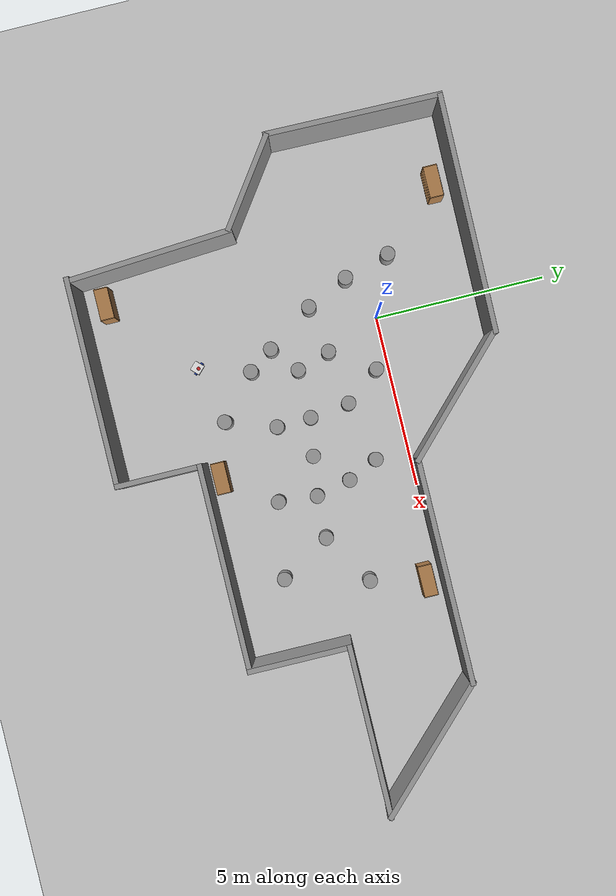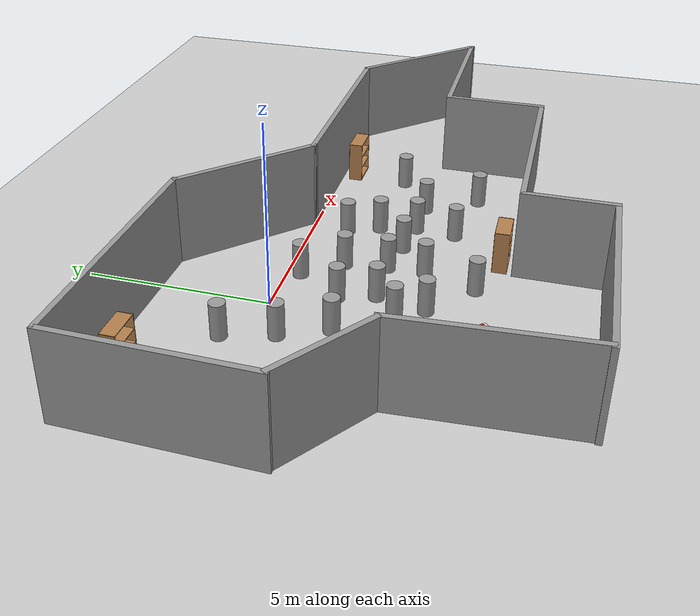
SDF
<sdf version="1.7">
 <world name="default">
  <light name="sun" type="directional">
   <pose>0 0 10 0 -0 0</pose>
   <diffuse>0.8 0.8 0.8 1</diffuse>
   <specular>0.2 0.2 0.2 1</specular>
   <attenuation>
    <range>1000</range>
    <constant>0.9</constant>
    <linear>0.01</linear>
    <quadratic>0.001</quadratic>
   </attenuation>
   <direction>-0.5 0.1 -0.9</direction>
   <spot><inner_angle>0</inner_angle><outer_angle>0</outer_angle><falloff>0</falloff></spot>
  </light>
  <model name="ground_plane">
   <static>1</static>
   <link name="link">
    <collision name="collision">
     <geometry><plane><normal>0 0 1</normal><size>100 100</size></plane></geometry>
     <surface>
      <contact><collide_bitmask>65535</collide_bitmask></contact>
      <friction><ode><mu>100</mu><mu2>50</mu2></ode></friction>
     </surface>
    </collision>
    <visual name="visual">
     <cast_shadows>0</cast_shadows>
     <geometry><plane><normal>0 0 1</normal><size>100 100</size></plane></geometry>
     <material>
      <script><uri>file://media/materials/scripts/gazebo.material</uri><name>Gazebo/Grey</name></script>
     </material>
    </visual>
   </link>
  </model>
  <gravity>0 0 -9.8</gravity>
  <magnetic_field>6e-06 2.3e-05 -4.2e-05</magnetic_field>
  <atmosphere type="adiabatic"/>
  <physics type="ode">
   <max_step_size>0.001</max_step_size>
   <real_time_factor>1</real_time_factor>
   <real_time_update_rate>1000</real_time_update_rate>
  </physics>
  <scene><ambient>0.4 0.4 0.4 1</ambient><background>0.7 0.7 0.7 1</background><shadows>1</shadows></scene>
  <audio><device>default</device></audio>
  <spherical_coordinates>
   <surface_model>EARTH_WGS84</surface_model>
   <latitude_deg>0</latitude_deg>
   <longitude_deg>0</longitude_deg>
   <elevation>0</elevation>
   <heading_deg>0</heading_deg>
  </spherical_coordinates>
  <model name="bird_looking_arena">
   <pose>4.12763 -2.55962 0 0 -0 0</pose>
   <link name="Wall_0">
    <collision name="Wall_0_Collision">
     <geometry><box><size>2.91921 0.15 2.5</size></box></geometry>
     <pose>0 0 1.25 0 -0 0</pose>
    </collision>
    <visual name="Wall_0_Visual">
     <pose>0 0 1.25 0 -0 0</pose>
     <geometry><box><size>2.91921 0.15 2.5</size></box></geometry>
     <material>
      <script><uri>file://media/materials/scripts/gazebo.material</uri><name>Gazebo/Grey</name></script>
      <ambient>1 1 1 1</ambient>
     </material>
     <meta><layer>0</layer></meta>
    </visual>
    <pose>-8.44584 -0.130166 0 0 -0 -0.619494</pose>
   </link>
   <link name="Wall_18">
    <collision name="Wall_18_Collision">
     <geometry><box><size>6.83715 0.15 2.5</size></box></geometry>
     <pose>0 0 1.25 0 -0 0</pose>
    </collision>
    <visual name="Wall_18_Visual">
     <pose>0 0 1.25 0 -0 0</pose>
     <geometry><box><size>6.83715 0.15 2.5</size></box></geometry>
     <material>
      <script><uri>file://media/materials/scripts/gazebo.material</uri><name>Gazebo/Grey</name></script>
      <ambient>1 1 1 1</ambient>
     </material>
     <meta><layer>0</layer></meta>
    </visual>
    <pose>-6.15934 5.60268 0 0 -0 -0.008654</pose>
   </link>
   <link name="Wall_19">
    <collision name="Wall_19_Collision">
     <geometry><box><size>4.30136 0.15 2.5</size></box></geometry>
     <pose>0 0 1.25 0 -0 0</pose>
    </collision>
    <visual name="Wall_19_Visual">
     <pose>0 0 1.25 0 -0 0</pose>
     <geometry><box><size>4.30136 0.15 2.5</size></box></geometry>
     <material>
      <script><uri>file://media/materials/scripts/gazebo.material</uri><name>Gazebo/Grey</name></script>
      <ambient>1 1 1 1</ambient>
     </material>
     <meta><layer>0</layer></meta>
    </visual>
    <pose>-1.32607 4.09326 0 0 -0 -0.770231</pose>
   </link>
   <link name="Wall_20">
    <collision name="Wall_20_Collision">
     <geometry><box><size>6.5 0.15 2.5</size></box></geometry>
     <pose>0 0 1.25 0 -0 0</pose>
    </collision>
    <visual name="Wall_20_Visual">
     <pose>0 0 1.25 0 -0 0</pose>
     <geometry><box><size>6.5 0.15 2.5</size></box></geometry>
     <material>
      <script><uri>file://media/materials/scripts/gazebo.material</uri><name>Gazebo/Grey</name></script>
      <ambient>1 1 1 1</ambient>
     </material>
     <meta><layer>0</layer></meta>
    </visual>
    <pose>3.33875 2.64797 0 0 -0 0</pose>
   </link>
   <link name="Wall_21">
    <collision name="Wall_21_Collision">
     <geometry><box><size>4.5 0.15 2.5</size></box></geometry>
     <pose>0 0 1.25 0 -0 0</pose>
    </collision>
    <visual name="Wall_21_Visual">
     <pose>0 0 1.25 0 -0 0</pose>
     <geometry><box><size>4.5 0.15 2.5</size></box></geometry>
     <material>
      <script><uri>file://media/materials/scripts/gazebo.material</uri><name>Gazebo/Grey</name></script>
      <ambient>1 1 1 1</ambient>
     </material>
     <meta><layer>0</layer></meta>
    </visual>
    <pose>8.05171 1.11001 0 0 -0 -0.785398</pose>
   </link>
   <link name="Wall_22">
    <collision name="Wall_22_Collision">
     <geometry><box><size>5 0.15 2.5</size></box></geometry>
     <pose>0 0 1.25 0 -0 0</pose>
    </collision>
    <visual name="Wall_22_Visual">
     <pose>0 0 1.25 0 -0 0</pose>
     <geometry><box><size>5 0.15 2.5</size></box></geometry>
     <material>
      <script><uri>file://media/materials/scripts/gazebo.material</uri><name>Gazebo/Grey</name></script>
      <ambient>1 1 1 1</ambient>
     </material>
     <meta><layer>0</layer></meta>
    </visual>
    <pose>7.16467 -0.427949 0 0 -0 3.14159</pose>
   </link>
   <link name="Wall_23">
    <collision name="Wall_23_Collision">
     <geometry><box><size>3 0.15 2.5</size></box></geometry>
     <pose>0 0 1.25 0 -0 0</pose>
    </collision>
    <visual name="Wall_23_Visual">
     <pose>0 0 1.25 0 -0 0</pose>
     <geometry><box><size>3 0.15 2.5</size></box></geometry>
     <material>
      <script><uri>file://media/materials/scripts/gazebo.material</uri><name>Gazebo/Grey</name></script>
      <ambient>1 1 1 1</ambient>
     </material>
     <meta><layer>0</layer></meta>
    </visual>
    <pose>4.73966 -1.85295 0 0 -0 -1.5708</pose>
   </link>
   <link name="Wall_24">
    <collision name="Wall_24_Collision">
     <geometry><box><size>6 0.15 2.5</size></box></geometry>
     <pose>0 0 1.25 0 -0 0</pose>
    </collision>
    <visual name="Wall_24_Visual">
     <pose>0 0 1.25 0 -0 0</pose>
     <geometry><box><size>6 0.15 2.5</size></box></geometry>
     <material>
      <script><uri>file://media/materials/scripts/gazebo.material</uri><name>Gazebo/Grey</name></script>
      <ambient>1 1 1 1</ambient>
     </material>
     <meta><layer>0</layer></meta>
    </visual>
    <pose>1.81467 -3.27795 0 0 -0 3.14159</pose>
   </link>
   <link name="Wall_25">
    <collision name="Wall_25_Collision">
     <geometry><box><size>2.5 0.15 2.5</size></box></geometry>
     <pose>0 0 1.25 0 -0 0</pose>
    </collision>
    <visual name="Wall_25_Visual">
     <pose>0 0 1.25 0 -0 0</pose>
     <geometry><box><size>2.5 0.15 2.5</size></box></geometry>
     <material>
      <script><uri>file://media/materials/scripts/gazebo.material</uri><name>Gazebo/Grey</name></script>
      <ambient>1 1 1 1</ambient>
     </material>
     <meta><layer>0</layer></meta>
    </visual>
    <pose>-1.11034 -4.45295 0 0 -0 -1.5708</pose>
   </link>
   <link name="Wall_26">
    <collision name="Wall_26_Collision">
     <geometry><box><size>6.05214 0.15 2.5</size></box></geometry>
     <pose>0 0 1.25 0 -0 0</pose>
    </collision>
    <visual name="Wall_26_Visual">
     <pose>0 0 1.25 0 -0 0</pose>
     <geometry><box><size>6.05214 0.15 2.5</size></box></geometry>
     <material>
      <script><uri>file://media/materials/scripts/gazebo.material</uri><name>Gazebo/Grey</name></script>
      <ambient>1 1 1 1</ambient>
     </material>
     <meta><layer>0</layer></meta>
    </visual>
    <pose>-4.0614 -5.62795 0 0 -0 3.14159</pose>
   </link>
   <link name="Wall_28">
    <collision name="Wall_28_Collision">
     <geometry><box><size>4.85382 0.15 2.5</size></box></geometry>
     <pose>0 0 1.25 0 -0 0</pose>
    </collision>
    <visual name="Wall_28_Visual">
     <pose>0 0 1.25 0 -0 0</pose>
     <geometry><box><size>4.85382 0.15 2.5</size></box></geometry>
     <material>
      <script><uri>file://media/materials/scripts/gazebo.material</uri><name>Gazebo/Grey</name></script>
      <ambient>1 1 1 1</ambient>
     </material>
     <meta><layer>0</layer></meta>
    </visual>
    <pose>-7.11898 -3.28103 0 0 -0 -1.50568</pose>
   </link>
   <link name="Wall_3">
    <collision name="Wall_3_Collision">
     <geometry><box><size>5.10834 0.15 2.5</size></box></geometry>
     <pose>0 0 1.25 0 -0 0</pose>
    </collision>
    <visual name="Wall_3_Visual">
     <pose>0 0 1.25 0 -0 0</pose>
     <geometry><box><size>5.10834 0.15 2.5</size></box></geometry>
     <material>
      <script><uri>file://media/materials/scripts/gazebo.material</uri><name>Gazebo/Grey</name></script>
      <ambient>1 1 1 1</ambient>
     </material>
     <meta><layer>0</layer></meta>
    </visual>
    <pose>-9.5845 3.15269 0 0 -0 1.55661</pose>
   </link>
   <static>1</static>
  </model>
  <model name="bookshelf">
   <static>1</static>
   <link name="link">
    <inertial><mass>1</mass></inertial>
    <collision name="back">
     <pose>0 0.005 0.6 0 -0 0</pose>
     <geometry><box><size>0.9 0.01 1.2</size></box></geometry>
    </collision>
    <visual name="visual1">
     <pose>0 0.005 0.6 0 -0 0</pose>
     <geometry><box><size>0.9 0.01 1.2</size></box></geometry>
     <material>
      <script><uri>file://media/materials/scripts/gazebo.material</uri><name>Gazebo/Wood</name></script>
     </material>
    </visual>
    <collision name="left_side">
     <pose>0.45 -0.195 0.6 0 -0 0</pose>
     <geometry><box><size>0.02 0.4 1.2</size></box></geometry>
    </collision>
    <visual name="visual2">
     <pose>0.45 -0.195 0.6 0 -0 0</pose>
     <geometry><box><size>0.02 0.4 1.2</size></box></geometry>
     <material>
      <script><uri>file://media/materials/scripts/gazebo.material</uri><name>Gazebo/Wood</name></script>
     </material>
    </visual>
    <collision name="right_side">
     <pose>-0.45 -0.195 0.6 0 -0 0</pose>
     <geometry><box><size>0.02 0.4 1.2</size></box></geometry>
    </collision>
    <visual name="visual3">
     <pose>-0.45 -0.195 0.6 0 -0 0</pose>
     <geometry><box><size>0.02 0.4 1.2</size></box></geometry>
     <material>
      <script><uri>file://media/materials/scripts/gazebo.material</uri><name>Gazebo/Wood</name></script>
     </material>
    </visual>
    <collision name="bottom">
     <pose>0 -0.195 0.03 0 -0 0</pose>
     <geometry><box><size>0.88 0.4 0.06</size></box></geometry>
    </collision>
    <visual name="visual4">
     <pose>0 -0.195 0.03 0 -0 0</pose>
     <geometry><box><size>0.88 0.4 0.06</size></box></geometry>
     <material>
      <script><uri>file://media/materials/scripts/gazebo.material</uri><name>Gazebo/Wood</name></script>
     </material>
    </visual>
    <collision name="top">
     <pose>0 -0.195 1.19 0 -0 0</pose>
     <geometry><box><size>0.88 0.4 0.02</size></box></geometry>
    </collision>
    <visual name="visual5">
     <pose>0 -0.195 1.19 0 -0 0</pose>
     <geometry><box><size>0.88 0.4 0.02</size></box></geometry>
     <material>
      <script><uri>file://media/materials/scripts/gazebo.material</uri><name>Gazebo/Wood</name></script>
     </material>
    </visual>
    <collision name="low_shelf">
     <pose>0 -0.195 0.43 0 -0 0</pose>
     <geometry><box><size>0.88 0.4 0.02</size></box></geometry>
    </collision>
    <visual name="visual6">
     <pose>0 -0.195 0.43 0 -0 0</pose>
     <geometry><box><size>0.88 0.4 0.02</size></box></geometry>
     <material>
      <script><uri>file://media/materials/scripts/gazebo.material</uri><name>Gazebo/Wood</name></script>
     </material>
    </visual>
    <collision name="high_shelf">
     <pose>0 -0.195 0.8 0 -0 0</pose>
     <geometry><box><size>0.88 0.4 0.02</size></box></geometry>
    </collision>
    <visual name="visual7">
     <pose>0 -0.195 0.8 0 -0 0</pose>
     <geometry><box><size>0.88 0.4 0.02</size></box></geometry>
     <material>
      <script><uri>file://media/materials/scripts/gazebo.material</uri><name>Gazebo/Wood</name></script>
     </material>
    </visual>
   </link>
   <pose>-3.31271 2.65371 0 0 -0 0</pose>
  </model>
  <model name="bookshelf_0">
   <static>1</static>
   <link name="link">
    <inertial><mass>1</mass></inertial>
    <collision name="back">
     <pose>0 0.005 0.6 0 -0 0</pose>
     <geometry><box><size>0.9 0.01 1.2</size></box></geometry>
    </collision>
    <visual name="visual1">
     <pose>0 0.005 0.6 0 -0 0</pose>
     <geometry><box><size>0.9 0.01 1.2</size></box></geometry>
     <material>
      <script><uri>file://media/materials/scripts/gazebo.material</uri><name>Gazebo/Wood</name></script>
     </material>
    </visual>
    <collision name="left_side">
     <pose>0.45 -0.195 0.6 0 -0 0</pose>
     <geometry><box><size>0.02 0.4 1.2</size></box></geometry>
    </collision>
    <visual name="visual2">
     <pose>0.45 -0.195 0.6 0 -0 0</pose>
     <geometry><box><size>0.02 0.4 1.2</size></box></geometry>
     <material>
      <script><uri>file://media/materials/scripts/gazebo.material</uri><name>Gazebo/Wood</name></script>
     </material>
    </visual>
    <collision name="right_side">
     <pose>-0.45 -0.195 0.6 0 -0 0</pose>
     <geometry><box><size>0.02 0.4 1.2</size></box></geometry>
    </collision>
    <visual name="visual3">
     <pose>-0.45 -0.195 0.6 0 -0 0</pose>
     <geometry><box><size>0.02 0.4 1.2</size></box></geometry>
     <material>
      <script><uri>file://media/materials/scripts/gazebo.material</uri><name>Gazebo/Wood</name></script>
     </material>
    </visual>
    <collision name="bottom">
     <pose>0 -0.195 0.03 0 -0 0</pose>
     <geometry><box><size>0.88 0.4 0.06</size></box></geometry>
    </collision>
    <visual name="visual4">
     <pose>0 -0.195 0.03 0 -0 0</pose>
     <geometry><box><size>0.88 0.4 0.06</size></box></geometry>
     <material>
      <script><uri>file://media/materials/scripts/gazebo.material</uri><name>Gazebo/Wood</name></script>
     </material>
    </visual>
    <collision name="top">
     <pose>0 -0.195 1.19 0 -0 0</pose>
     <geometry><box><size>0.88 0.4 0.02</size></box></geometry>
    </collision>
    <visual name="visual5">
     <pose>0 -0.195 1.19 0 -0 0</pose>
     <geometry><box><size>0.88 0.4 0.02</size></box></geometry>
     <material>
      <script><uri>file://media/materials/scripts/gazebo.material</uri><name>Gazebo/Wood</name></script>
     </material>
    </visual>
    <collision name="low_shelf">
     <pose>0 -0.195 0.43 0 -0 0</pose>
     <geometry><box><size>0.88 0.4 0.02</size></box></geometry>
    </collision>
    <visual name="visual6">
     <pose>0 -0.195 0.43 0 -0 0</pose>
     <geometry><box><size>0.88 0.4 0.02</size></box></geometry>
     <material>
      <script><uri>file://media/materials/scripts/gazebo.material</uri><name>Gazebo/Wood</name></script>
     </material>
    </visual>
    <collision name="high_shelf">
     <pose>0 -0.195 0.8 0 -0 0</pose>
     <geometry><box><size>0.88 0.4 0.02</size></box></geometry>
    </collision>
    <visual name="visual7">
     <pose>0 -0.195 0.8 0 -0 0</pose>
     <geometry><box><size>0.88 0.4 0.02</size></box></geometry>
     <material>
      <script><uri>file://media/materials/scripts/gazebo.material</uri><name>Gazebo/Wood</name></script>
     </material>
    </visual>
   </link>
   <pose>7.70335 -0.196655 0 0 -0 0</pose>
  </model>
  <model name="bookshelf_1">
   <static>1</static>
   <link name="link">
    <inertial><mass>1</mass></inertial>
    <collision name="back">
     <pose>0 0.005 0.6 0 -0 0</pose>
     <geometry><box><size>0.9 0.01 1.2</size></box></geometry>
    </collision>
    <visual name="visual1">
     <pose>0 0.005 0.6 0 -0 0</pose>
     <geometry><box><size>0.9 0.01 1.2</size></box></geometry>
     <material>
      <script><uri>file://media/materials/scripts/gazebo.material</uri><name>Gazebo/Wood</name></script>
     </material>
    </visual>
    <collision name="left_side">
     <pose>0.45 -0.195 0.6 0 -0 0</pose>
     <geometry><box><size>0.02 0.4 1.2</size></box></geometry>
    </collision>
    <visual name="visual2">
     <pose>0.45 -0.195 0.6 0 -0 0</pose>
     <geometry><box><size>0.02 0.4 1.2</size></box></geometry>
     <material>
      <script><uri>file://media/materials/scripts/gazebo.material</uri><name>Gazebo/Wood</name></script>
     </material>
    </visual>
    <collision name="right_side">
     <pose>-0.45 -0.195 0.6 0 -0 0</pose>
     <geometry><box><size>0.02 0.4 1.2</size></box></geometry>
    </collision>
    <visual name="visual3">
     <pose>-0.45 -0.195 0.6 0 -0 0</pose>
     <geometry><box><size>0.02 0.4 1.2</size></box></geometry>
     <material>
      <script><uri>file://media/materials/scripts/gazebo.material</uri><name>Gazebo/Wood</name></script>
     </material>
    </visual>
    <collision name="bottom">
     <pose>0 -0.195 0.03 0 -0 0</pose>
     <geometry><box><size>0.88 0.4 0.06</size></box></geometry>
    </collision>
    <visual name="visual4">
     <pose>0 -0.195 0.03 0 -0 0</pose>
     <geometry><box><size>0.88 0.4 0.06</size></box></geometry>
     <material>
      <script><uri>file://media/materials/scripts/gazebo.material</uri><name>Gazebo/Wood</name></script>
     </material>
    </visual>
    <collision name="top">
     <pose>0 -0.195 1.19 0 -0 0</pose>
     <geometry><box><size>0.88 0.4 0.02</size></box></geometry>
    </collision>
    <visual name="visual5">
     <pose>0 -0.195 1.19 0 -0 0</pose>
     <geometry><box><size>0.88 0.4 0.02</size></box></geometry>
     <material>
      <script><uri>file://media/materials/scripts/gazebo.material</uri><name>Gazebo/Wood</name></script>
     </material>
    </visual>
    <collision name="low_shelf">
     <pose>0 -0.195 0.43 0 -0 0</pose>
     <geometry><box><size>0.88 0.4 0.02</size></box></geometry>
    </collision>
    <visual name="visual6">
     <pose>0 -0.195 0.43 0 -0 0</pose>
     <geometry><box><size>0.88 0.4 0.02</size></box></geometry>
     <material>
      <script><uri>file://media/materials/scripts/gazebo.material</uri><name>Gazebo/Wood</name></script>
     </material>
    </visual>
    <collision name="high_shelf">
     <pose>0 -0.195 0.8 0 -0 0</pose>
     <geometry><box><size>0.88 0.4 0.02</size></box></geometry>
    </collision>
    <visual name="visual7">
     <pose>0 -0.195 0.8 0 -0 0</pose>
     <geometry><box><size>0.88 0.4 0.02</size></box></geometry>
     <material>
      <script><uri>file://media/materials/scripts/gazebo.material</uri><name>Gazebo/Wood</name></script>
     </material>
    </visual>
   </link>
   <pose>3.47051 -5.23763 0 0 -0 0</pose>
  </model>
  <model name="bookshelf_2">
   <static>1</static>
   <link name="link">
    <inertial><mass>1</mass></inertial>
    <collision name="back">
     <pose>0 0.005 0.6 0 -0 0</pose>
     <geometry><box><size>0.9 0.01 1.2</size></box></geometry>
    </collision>
    <visual name="visual1">
     <pose>0 0.005 0.6 0 -0 0</pose>
     <geometry><box><size>0.9 0.01 1.2</size></box></geometry>
     <material>
      <script><uri>file://media/materials/scripts/gazebo.material</uri><name>Gazebo/Wood</name></script>
     </material>
    </visual>
    <collision name="left_side">
     <pose>0.45 -0.195 0.6 0 -0 0</pose>
     <geometry><box><size>0.02 0.4 1.2</size></box></geometry>
    </collision>
    <visual name="visual2">
     <pose>0.45 -0.195 0.6 0 -0 0</pose>
     <geometry><box><size>0.02 0.4 1.2</size></box></geometry>
     <material>
      <script><uri>file://media/materials/scripts/gazebo.material</uri><name>Gazebo/Wood</name></script>
     </material>
    </visual>
    <collision name="right_side">
     <pose>-0.45 -0.195 0.6 0 -0 0</pose>
     <geometry><box><size>0.02 0.4 1.2</size></box></geometry>
    </collision>
    <visual name="visual3">
     <pose>-0.45 -0.195 0.6 0 -0 0</pose>
     <geometry><box><size>0.02 0.4 1.2</size></box></geometry>
     <material>
      <script><uri>file://media/materials/scripts/gazebo.material</uri><name>Gazebo/Wood</name></script>
     </material>
    </visual>
    <collision name="bottom">
     <pose>0 -0.195 0.03 0 -0 0</pose>
     <geometry><box><size>0.88 0.4 0.06</size></box></geometry>
    </collision>
    <visual name="visual4">
     <pose>0 -0.195 0.03 0 -0 0</pose>
     <geometry><box><size>0.88 0.4 0.06</size></box></geometry>
     <material>
      <script><uri>file://media/materials/scripts/gazebo.material</uri><name>Gazebo/Wood</name></script>
     </material>
    </visual>
    <collision name="top">
     <pose>0 -0.195 1.19 0 -0 0</pose>
     <geometry><box><size>0.88 0.4 0.02</size></box></geometry>
    </collision>
    <visual name="visual5">
     <pose>0 -0.195 1.19 0 -0 0</pose>
     <geometry><box><size>0.88 0.4 0.02</size></box></geometry>
     <material>
      <script><uri>file://media/materials/scripts/gazebo.material</uri><name>Gazebo/Wood</name></script>
     </material>
    </visual>
    <collision name="low_shelf">
     <pose>0 -0.195 0.43 0 -0 0</pose>
     <geometry><box><size>0.88 0.4 0.02</size></box></geometry>
    </collision>
    <visual name="visual6">
     <pose>0 -0.195 0.43 0 -0 0</pose>
     <geometry><box><size>0.88 0.4 0.02</size></box></geometry>
     <material>
      <script><uri>file://media/materials/scripts/gazebo.material</uri><name>Gazebo/Wood</name></script>
     </material>
    </visual>
    <collision name="high_shelf">
     <pose>0 -0.195 0.8 0 -0 0</pose>
     <geometry><box><size>0.88 0.4 0.02</size></box></geometry>
    </collision>
    <visual name="visual7">
     <pose>0 -0.195 0.8 0 -0 0</pose>
     <geometry><box><size>0.88 0.4 0.02</size></box></geometry>
     <material>
      <script><uri>file://media/materials/scripts/gazebo.material</uri><name>Gazebo/Wood</name></script>
     </material>
    </visual>
   </link>
   <pose>-2.1423 -7.28243 0 0 -0 0</pose>
  </model>
  <model name="unit_cylinder_clone_0">
   <pose>-0.697431 -1.83412 0.499992 0 -0 -1e-06</pose>
   <link name="link">
    <inertial>
     <mass>1</mass>
     <inertia><ixx>0.145833</ixx><ixy>0</ixy><ixz>0</ixz><iyy>0.145833</iyy><iyz>0</iyz><izz>0.125</izz></inertia>
    </inertial>
    <collision name="collision">
     <geometry><cylinder><radius>0.212382</radius><length>1</length></cylinder></geometry>
    </collision>
    <visual name="visual">
     <geometry><cylinder><radius>0.212382</radius><length>1</length></cylinder></geometry>
     <material>
      <script><name>Gazebo/Grey</name><uri>file://media/materials/scripts/gazebo.material</uri></script>
     </material>
    </visual>
   </link>
  </model>
  <model name="unit_cylinder_clone_0_clone">
   <pose>0.706771 -3.88404 0.499992 0 -0 -1e-06</pose>
   <link name="link">
    <inertial>
     <mass>1</mass>
     <inertia><ixx>0.145833</ixx><ixy>0</ixy><ixz>0</ixz><iyy>0.145833</iyy><iyz>0</iyz><izz>0.125</izz></inertia>
    </inertial>
    <collision name="collision">
     <geometry><cylinder><radius>0.212382</radius><length>1</length></cylinder></geometry>
    </collision>
    <visual name="visual">
     <geometry><cylinder><radius>0.212382</radius><length>1</length></cylinder></geometry>
     <material>
      <script><name>Gazebo/Grey</name><uri>file://media/materials/scripts/gazebo.material</uri></script>
     </material>
    </visual>
   </link>
  </model>
  <model name="unit_cylinder_clone_0_clone_clone">
   <pose>2.3934 -2.52963 0.499992 0 -0 -1e-06</pose>
   <link name="link">
    <inertial>
     <mass>1</mass>
     <inertia><ixx>0.145833</ixx><ixy>0</ixy><ixz>0</ixz><iyy>0.145833</iyy><iyz>0</iyz><izz>0.125</izz></inertia>
    </inertial>
    <collision name="collision">
     <geometry><cylinder><radius>0.212382</radius><length>1</length></cylinder></geometry>
    </collision>
    <visual name="visual">
     <geometry><cylinder><radius>0.212382</radius><length>1</length></cylinder></geometry>
     <material>
      <script><name>Gazebo/Grey</name><uri>file://media/materials/scripts/gazebo.material</uri></script>
     </material>
    </visual>
   </link>
  </model>
  <model name="unit_cylinder_clone_0_clone_clone_0">
   <pose>-1.63861 0.721233 0.499992 0 -0 -1e-06</pose>
   <link name="link">
    <inertial>
     <mass>1</mass>
     <inertia><ixx>0.145833</ixx><ixy>0</ixy><ixz>0</ixz><iyy>0.145833</iyy><iyz>0</iyz><izz>0.125</izz></inertia>
    </inertial>
    <collision name="collision">
     <geometry><cylinder><radius>0.212382</radius><length>1</length></cylinder></geometry>
    </collision>
    <visual name="visual">
     <geometry><cylinder><radius>0.212382</radius><length>1</length></cylinder></geometry>
     <material>
      <script><name>Gazebo/Grey</name><uri>file://media/materials/scripts/gazebo.material</uri></script>
     </material>
    </visual>
   </link>
  </model>
  <model name="unit_cylinder_clone_0_clone_clone_1">
   <pose>6.71456 -4.35419 0.499992 0 -0 -1e-06</pose>
   <link name="link">
    <inertial>
     <mass>1</mass>
     <inertia><ixx>0.145833</ixx><ixy>0</ixy><ixz>0</ixz><iyy>0.145833</iyy><iyz>0</iyz><izz>0.125</izz></inertia>
    </inertial>
    <collision name="collision">
     <geometry><cylinder><radius>0.212382</radius><length>1</length></cylinder></geometry>
    </collision>
    <visual name="visual">
     <geometry><cylinder><radius>0.212382</radius><length>1</length></cylinder></geometry>
     <material>
      <script><name>Gazebo/Grey</name><uri>file://media/materials/scripts/gazebo.material</uri></script>
     </material>
    </visual>
   </link>
  </model>
  <model name="unit_cylinder_clone_0_clone_clone_2">
   <pose>4.3955 -1.86475 0.499992 0 -0 -1e-06</pose>
   <link name="link">
    <inertial>
     <mass>1</mass>
     <inertia><ixx>0.145833</ixx><ixy>0</ixy><ixz>0</ixz><iyy>0.145833</iyy><iyz>0</iyz><izz>0.125</izz></inertia>
    </inertial>
    <collision name="collision">
     <geometry><cylinder><radius>0.212382</radius><length>1</length></cylinder></geometry>
    </collision>
    <visual name="visual">
     <geometry><cylinder><radius>0.212382</radius><length>1</length></cylinder></geometry>
     <material>
      <script><name>Gazebo/Grey</name><uri>file://media/materials/scripts/gazebo.material</uri></script>
     </material>
    </visual>
   </link>
  </model>
  <model name="unit_cylinder_clone_0_clone_clone_3">
   <pose>1.93361 -4.94883 0.499992 0 -0 -1e-06</pose>
   <link name="link">
    <inertial>
     <mass>1</mass>
     <inertia><ixx>0.145833</ixx><ixy>0</ixy><ixz>0</ixz><iyy>0.145833</iyy><iyz>0</iyz><izz>0.125</izz></inertia>
    </inertial>
    <collision name="collision">
     <geometry><cylinder><radius>0.212382</radius><length>1</length></cylinder></geometry>
    </collision>
    <visual name="visual">
     <geometry><cylinder><radius>0.212382</radius><length>1</length></cylinder></geometry>
     <material>
      <script><name>Gazebo/Grey</name><uri>file://media/materials/scripts/gazebo.material</uri></script>
     </material>
    </visual>
   </link>
  </model>
  <model name="unit_cylinder_clone_0_clone_clone_4">
   <pose>-1.26336 -0.614243 0.499992 0 -0 -1e-06</pose>
   <link name="link">
    <inertial>
     <mass>1</mass>
     <inertia><ixx>0.145833</ixx><ixy>0</ixy><ixz>0</ixz><iyy>0.145833</iyy><iyz>0</iyz><izz>0.125</izz></inertia>
    </inertial>
    <collision name="collision">
     <geometry><cylinder><radius>0.212382</radius><length>1</length></cylinder></geometry>
    </collision>
    <visual name="visual">
     <geometry><cylinder><radius>0.212382</radius><length>1</length></cylinder></geometry>
     <material>
      <script><name>Gazebo/Grey</name><uri>file://media/materials/scripts/gazebo.material</uri></script>
     </material>
    </visual>
   </link>
  </model>
  <model name="unit_cylinder_clone_0_clone_clone_5">
   <pose>1.49169 -0.369352 0.499992 0 -0 -1e-06</pose>
   <link name="link">
    <inertial>
     <mass>1</mass>
     <inertia><ixx>0.145833</ixx><ixy>0</ixy><ixz>0</ixz><iyy>0.145833</iyy><iyz>0</iyz><izz>0.125</izz></inertia>
    </inertial>
    <collision name="collision">
     <geometry><cylinder><radius>0.212382</radius><length>1</length></cylinder></geometry>
    </collision>
    <visual name="visual">
     <geometry><cylinder><radius>0.212382</radius><length>1</length></cylinder></geometry>
     <material>
      <script><name>Gazebo/Grey</name><uri>file://media/materials/scripts/gazebo.material</uri></script>
     </material>
    </visual>
   </link>
  </model>
  <model name="unit_cylinder_clone_0_clone_clone_6">
   <pose>4.52445 -3.9996 0.499992 0 -0 -1e-06</pose>
   <link name="link">
    <inertial>
     <mass>1</mass>
     <inertia><ixx>0.145833</ixx><ixy>0</ixy><ixz>0</ixz><iyy>0.145833</iyy><iyz>0</iyz><izz>0.125</izz></inertia>
    </inertial>
    <collision name="collision">
     <geometry><cylinder><radius>0.212382</radius><length>1</length></cylinder></geometry>
    </collision>
    <visual name="visual">
     <geometry><cylinder><radius>0.212382</radius><length>1</length></cylinder></geometry>
     <material>
      <script><name>Gazebo/Grey</name><uri>file://media/materials/scripts/gazebo.material</uri></script>
     </material>
    </visual>
   </link>
  </model>
  <model name="unit_cylinder_clone_0_clone_clone_7">
   <pose>7.33934 -1.98493 0.499992 0 -0 -1e-06</pose>
   <link name="link">
    <inertial>
     <mass>1</mass>
     <inertia><ixx>0.145833</ixx><ixy>0</ixy><ixz>0</ixz><iyy>0.145833</iyy><iyz>0</iyz><izz>0.125</izz></inertia>
    </inertial>
    <collision name="collision">
     <geometry><cylinder><radius>0.212382</radius><length>1</length></cylinder></geometry>
    </collision>
    <visual name="visual">
     <geometry><cylinder><radius>0.212382</radius><length>1</length></cylinder></geometry>
     <material>
      <script><name>Gazebo/Grey</name><uri>file://media/materials/scripts/gazebo.material</uri></script>
     </material>
    </visual>
   </link>
  </model>
  <model name="unit_cylinder_clone_0_clone_clone_8">
   <pose>5.84869 -2.91661 0.499992 0 -0 -1e-06</pose>
   <link name="link">
    <inertial>
     <mass>1</mass>
     <inertia><ixx>0.145833</ixx><ixy>0</ixy><ixz>0</ixz><iyy>0.145833</iyy><iyz>0</iyz><izz>0.125</izz></inertia>
    </inertial>
    <collision name="collision">
     <geometry><cylinder><radius>0.212382</radius><length>1</length></cylinder></geometry>
    </collision>
    <visual name="visual">
     <geometry><cylinder><radius>0.212382</radius><length>1</length></cylinder></geometry>
     <material>
      <script><name>Gazebo/Grey</name><uri>file://media/materials/scripts/gazebo.material</uri></script>
     </material>
    </visual>
   </link>
  </model>
  <model name="my_bot">
   <link name="base_link">
    <inertial>
     <pose>0.055714 0 0.078571 0 -0 0</pose>
     <mass>0.7</mass>
     <inertia>
      <ixx>0.0064169</ixx>
      <ixy>0</ixy>
      <ixz>0.00118929</ixz>
      <iyy>0.00745405</iyy>
      <iyz>0</iyz>
      <izz>0.00876214</izz>
     </inertia>
    </inertial>
    <collision name="base_link_fixed_joint_lump__chassis_collision">
     <pose>0.05 0 0.075 0 -0 0</pose>
     <geometry><box><size>0.3 0.3 0.15</size></box></geometry>
    </collision>
    <collision name="base_link_fixed_joint_lump__caster_wheel_collision_1">
     <pose>0.14 0 0 0 -0 0</pose>
     <geometry><sphere><radius>0.05</radius></sphere></geometry>
     <surface><friction><ode><mu>0.001</mu><mu2>0.001</mu2></ode></friction></surface>
    </collision>
    <collision name="base_link_fixed_joint_lump__laser_frame_collision_2">
     <pose>0 0 0.175 0 -0 0</pose>
     <geometry><cylinder><length>0.04</length><radius>0.05</radius></cylinder></geometry>
    </collision>
    <visual name="base_link_fixed_joint_lump__chassis_visual">
     <pose>0.05 0 0.075 0 -0 0</pose>
     <geometry><box><size>0.3 0.3 0.15</size></box></geometry>
     <material>
      <script><name>Gazebo/White</name><uri>file://media/materials/scripts/gazebo.material</uri></script>
     </material>
    </visual>
    <visual name="base_link_fixed_joint_lump__caster_wheel_visual_1">
     <pose>0.14 0 0 0 -0 0</pose>
     <geometry><sphere><radius>0.05</radius></sphere></geometry>
     <material>
      <script><name>Gazebo/Black</name><uri>file://media/materials/scripts/gazebo.material</uri></script>
     </material>
    </visual>
    <visual name="base_link_fixed_joint_lump__laser_frame_visual_2">
     <pose>0 0 0.175 0 -0 0</pose>
     <geometry><cylinder><length>0.04</length><radius>0.05</radius></cylinder></geometry>
     <material>
      <script><name>Gazebo/Red</name><uri>file://media/materials/scripts/gazebo.material</uri></script>
     </material>
    </visual>
    <sensor name="laser" type="ray">
     <visualize>1</visualize>
     <update_rate>10</update_rate>
     <ray>
      <scan>
       <horizontal>
        <samples>360</samples>
        <min_angle>-3.14</min_angle>
        <max_angle>3.14</max_angle>
        <resolution>1</resolution>
       </horizontal>
       <vertical><samples>1</samples><min_angle>0</min_angle><max_angle>0</max_angle></vertical>
      </scan>
      <range><min>0.3</min><max>12</max></range>
     </ray>
     <plugin name="laser_controller" filename="libgazebo_ros_ray_sensor.so">
      <ros><argument>~/out:=scan</argument></ros>
      <output_type>sensor_msgs/LaserScan</output_type>
      <frame_name>laser_frame</frame_name>
     </plugin>
     <pose>0 0 0.175 0 -0 0</pose>
    </sensor>
   </link>
   <joint name="left_wheel_joint" type="revolute">
    <pose relative_to="base_link">0 0.175 0 -1.5708 0 0</pose>
    <parent>base_link</parent>
    <child>left_wheel</child>
    <axis>
     <xyz>0 0 1</xyz>
     <limit><lower>-1e+16</lower><upper>1e+16</upper></limit>
     <dynamics><spring_reference>0</spring_reference><spring_stiffness>0</spring_stiffness></dynamics>
    </axis>
   </joint>
   <link name="left_wheel">
    <pose relative_to="left_wheel_joint">0 0 0 0 -0 0</pose>
    <inertial>
     <mass>0.1</mass>
     <inertia>
      <ixx>8.33333e-05</ixx>
      <ixy>0</ixy>
      <ixz>0</ixz>
      <iyy>8.33333e-05</iyy>
      <iyz>0</iyz>
      <izz>0.000125</izz>
     </inertia>
    </inertial>
    <collision name="left_wheel_collision">
     <geometry><cylinder><length>0.04</length><radius>0.05</radius></cylinder></geometry>
    </collision>
    <visual name="left_wheel_visual">
     <geometry><cylinder><length>0.04</length><radius>0.05</radius></cylinder></geometry>
     <material>
      <script><name>Gazebo/Blue</name><uri>file://media/materials/scripts/gazebo.material</uri></script>
     </material>
    </visual>
   </link>
   <joint name="right_wheel_joint" type="revolute">
    <pose relative_to="base_link">0 -0.175 0 1.5708 -0 0</pose>
    <parent>base_link</parent>
    <child>right_wheel</child>
    <axis>
     <xyz>0 0 -1</xyz>
     <limit><lower>-1e+16</lower><upper>1e+16</upper></limit>
     <dynamics><spring_reference>0</spring_reference><spring_stiffness>0</spring_stiffness></dynamics>
    </axis>
   </joint>
   <link name="right_wheel">
    <pose relative_to="right_wheel_joint">0 0 0 0 -0 0</pose>
    <inertial>
     <mass>0.1</mass>
     <inertia>
      <ixx>8.33333e-05</ixx>
      <ixy>0</ixy>
      <ixz>0</ixz>
      <iyy>8.33333e-05</iyy>
      <iyz>0</iyz>
      <izz>0.000125</izz>
     </inertia>
    </inertial>
    <collision name="right_wheel_collision">
     <geometry><cylinder><length>0.04</length><radius>0.05</radius></cylinder></geometry>
    </collision>
    <visual name="right_wheel_visual">
     <geometry><cylinder><length>0.04</length><radius>0.05</radius></cylinder></geometry>
     <material>
      <script><name>Gazebo/Blue</name><uri>file://media/materials/scripts/gazebo.material</uri></script>
     </material>
    </visual>
   </link>
   <static>0</static>
   <plugin name="diff_drive" filename="libgazebo_ros_diff_drive.so">
    <left_joint>left_wheel_joint</left_joint>
    <right_joint>right_wheel_joint</right_joint>
    <wheel_separation>0.35</wheel_separation>
    <wheel_diameter>0.1</wheel_diameter>
    <max_wheel_torque>200</max_wheel_torque>
    <max_wheel_acceleration>10.0</max_wheel_acceleration>
    <odometry_frame>odom</odometry_frame>
    <robot_base_frame>base_link</robot_base_frame>
    <publish_odom>1</publish_odom>
    <publish_odom_tf>1</publish_odom_tf>
    <publish_wheel_tf>1</publish_wheel_tf>
   </plugin>
   <pose>0.223057 -5.35666 0.05 0 1.2e-05 -2.35591</pose>
  </model>
  <model name="unit_cylinder_clone_0_clone_clone_clone">
   <pose>0.983672 -2.55387 0.499999 0 0 -1e-06</pose>
   <link name="link">
    <inertial>
     <mass>1</mass>
     <inertia><ixx>0.145833</ixx><ixy>0</ixy><ixz>0</ixz><iyy>0.145833</iyy><iyz>0</iyz><izz>0.125</izz></inertia>
    </inertial>
    <collision name="collision">
     <geometry><cylinder><radius>0.212382</radius><length>1</length></cylinder></geometry>
    </collision>
    <visual name="visual">
     <geometry><cylinder><radius>0.212382</radius><length>1</length></cylinder></geometry>
     <material>
      <script><name>Gazebo/Grey</name><uri>file://media/materials/scripts/gazebo.material</uri></script>
     </material>
    </visual>
   </link>
  </model>
  <model name="unit_cylinder_clone_0_clone_clone_clone_0">
   <pose>3.48745 -2.72005 0.499992 0 -0 -1e-06</pose>
   <link name="link">
    <inertial>
     <mass>1</mass>
     <inertia><ixx>0.145833</ixx><ixy>0</ixy><ixz>0</ixz><iyy>0.145833</iyy><iyz>0</iyz><izz>0.125</izz></inertia>
    </inertial>
    <collision name="collision">
     <geometry><cylinder><radius>0.212382</radius><length>1</length></cylinder></geometry>
    </collision>
    <visual name="visual">
     <geometry><cylinder><radius>0.212382</radius><length>1</length></cylinder></geometry>
     <material>
      <script><name>Gazebo/Grey</name><uri>file://media/materials/scripts/gazebo.material</uri></script>
     </material>
    </visual>
   </link>
  </model>
  <model name="unit_cylinder_clone_0_clone_clone_clone_1">
   <pose>0.217112 -3.17868 0.499999 0 0 -1e-06</pose>
   <link name="link">
    <inertial>
     <mass>1</mass>
     <inertia><ixx>0.145833</ixx><ixy>0</ixy><ixz>0</ixz><iyy>0.145833</iyy><iyz>0</iyz><izz>0.125</izz></inertia>
    </inertial>
    <collision name="collision">
     <geometry><cylinder><radius>0.212382</radius><length>1</length></cylinder></geometry>
    </collision>
    <visual name="visual">
     <geometry><cylinder><radius>0.212382</radius><length>1</length></cylinder></geometry>
     <material>
      <script><name>Gazebo/Grey</name><uri>file://media/materials/scripts/gazebo.material</uri></script>
     </material>
    </visual>
   </link>
  </model>
  <model name="unit_cylinder_clone_0_clone_clone_clone_2">
   <pose>2.42568 -3.53028 0.499999 0 0 -1e-06</pose>
   <link name="link">
    <inertial>
     <mass>1</mass>
     <inertia><ixx>0.145833</ixx><ixy>0</ixy><ixz>0</ixz><iyy>0.145833</iyy><iyz>0</iyz><izz>0.125</izz></inertia>
    </inertial>
    <collision name="collision">
     <geometry><cylinder><radius>0.212382</radius><length>1</length></cylinder></geometry>
    </collision>
    <visual name="visual">
     <geometry><cylinder><radius>0.212382</radius><length>1</length></cylinder></geometry>
     <material>
      <script><name>Gazebo/Grey</name><uri>file://media/materials/scripts/gazebo.material</uri></script>
     </material>
    </visual>
   </link>
  </model>
  <model name="unit_cylinder_clone_0_clone_clone_clone_3">
   <pose>2.25011 -1.37784 0.499992 0 -0 -1e-06</pose>
   <link name="link">
    <inertial>
     <mass>1</mass>
     <inertia><ixx>0.145833</ixx><ixy>0</ixy><ixz>0</ixz><iyy>0.145833</iyy><iyz>0</iyz><izz>0.125</izz></inertia>
    </inertial>
    <collision name="collision">
     <geometry><cylinder><radius>0.212382</radius><length>1</length></cylinder></geometry>
    </collision>
    <visual name="visual">
     <geometry><cylinder><radius>0.212382</radius><length>1</length></cylinder></geometry>
     <material>
      <script><name>Gazebo/Grey</name><uri>file://media/materials/scripts/gazebo.material</uri></script>
     </material>
    </visual>
   </link>
  </model>
  <model name="unit_cylinder_clone_0_clone_clone_clone_4">
   <pose>4.62139 -2.87844 0.499992 0 -0 -1e-06</pose>
   <link name="link">
    <inertial>
     <mass>1</mass>
     <inertia><ixx>0.145833</ixx><ixy>0</ixy><ixz>0</ixz><iyy>0.145833</iyy><iyz>0</iyz><izz>0.125</izz></inertia>
    </inertial>
    <collision name="collision">
     <geometry><cylinder><radius>0.212382</radius><length>1</length></cylinder></geometry>
    </collision>
    <visual name="visual">
     <geometry><cylinder><radius>0.212382</radius><length>1</length></cylinder></geometry>
     <material>
      <script><name>Gazebo/Grey</name><uri>file://media/materials/scripts/gazebo.material</uri></script>
     </material>
    </visual>
   </link>
  </model>
  <model name="unit_cylinder_clone_0_clone_clone_clone_5">
   <pose>0.675092 -1.58917 0.499999 0 0 -2e-06</pose>
   <link name="link">
    <inertial>
     <mass>1</mass>
     <inertia><ixx>0.145833</ixx><ixy>0</ixy><ixz>0</ixz><iyy>0.145833</iyy><iyz>0</iyz><izz>0.125</izz></inertia>
    </inertial>
    <collision name="collision">
     <geometry><cylinder><radius>0.212382</radius><length>1</length></cylinder></geometry>
    </collision>
    <visual name="visual">
     <geometry><cylinder><radius>0.212382</radius><length>1</length></cylinder></geometry>
     <material>
      <script><name>Gazebo/Grey</name><uri>file://media/materials/scripts/gazebo.material</uri></script>
     </material>
    </visual>
   </link>
  </model>
  <model name="unit_cylinder_clone_0_clone_clone_clone_6">
   <pose>4 -1 0.499992 1e-06 -0 -1e-06</pose>
   <link name="link">
    <inertial>
     <mass>1</mass>
     <inertia><ixx>0.145833</ixx><ixy>0</ixy><ixz>0</ixz><iyy>0.145833</iyy><iyz>0</iyz><izz>0.125</izz></inertia>
    </inertial>
    <collision name="collision">
     <geometry><cylinder><radius>0.212382</radius><length>1</length></cylinder></geometry>
    </collision>
    <visual name="visual">
     <geometry><cylinder><radius>0.212382</radius><length>1</length></cylinder></geometry>
     <material>
      <script><name>Gazebo/Grey</name><uri>file://media/materials/scripts/gazebo.material</uri></script>
     </material>
    </visual>
   </link>
  </model>
 </world>
</sdf>
